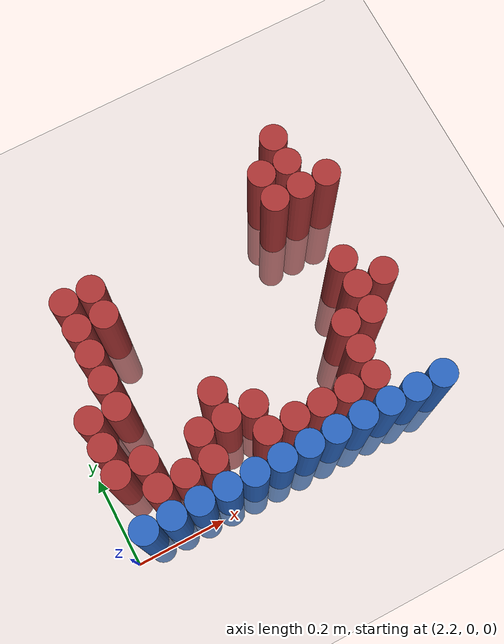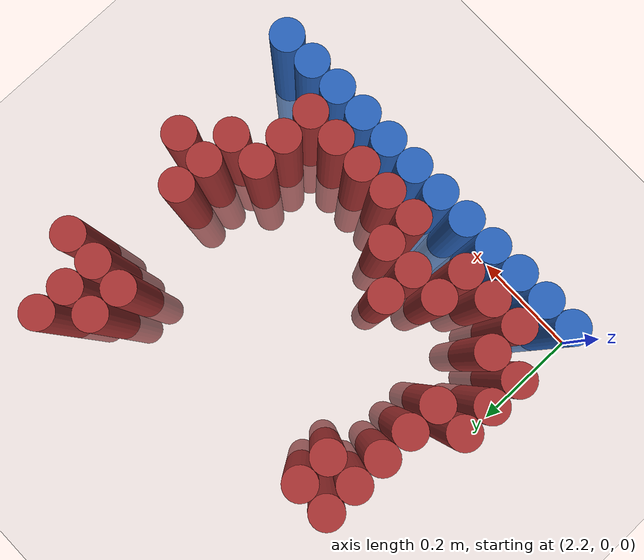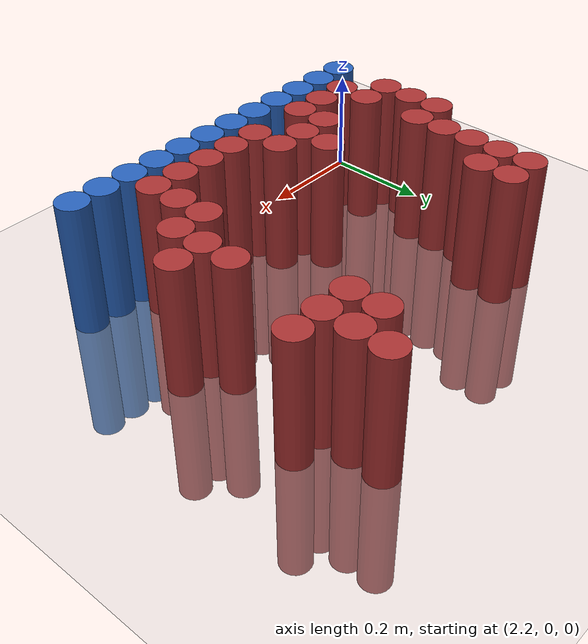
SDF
<sdf version="1.6">
 <world name="default">
  <model name="ground_plane">
   <static>1</static>
   <link name="link">
    <collision name="collision">
     <geometry><plane><normal>0 0 1</normal><size>100 100</size></plane></geometry>
     <surface><friction><ode><mu>100</mu><mu2>50</mu2></ode></friction></surface>
    </collision>
    <visual name="visual">
     <cast_shadows>0</cast_shadows>
     <geometry><plane><normal>0 0 1</normal><size>100 100</size></plane></geometry>
     <material>
      <script><uri>file://media/materials/scripts/gazebo.material</uri><name>Gazebo/Grey</name></script>
     </material>
    </visual>
   </link>
  </model>
  <model name="unit_cylinder_219">
   <static>1</static>
   <pose>2.850000 0.630000 0.000000 0.000000 0.000000 0.000000</pose>
   <link name="link">
    <inertial>
     <mass>1</mass>
     <inertia><ixx>0.145833</ixx><ixy>0</ixy><ixz>0</ixz><iyy>0.145833</iyy><iyz>0</iyz><izz>0.125</izz></inertia>
    </inertial>
    <collision name="collision">
     <geometry><cylinder><radius>0.030000</radius><length>0.5</length></cylinder></geometry>
    </collision>
    <visual name="visual">
     <geometry><cylinder><radius>0.030000</radius><length>0.5</length></cylinder></geometry>
     <material>
      <ambient>0.648000 0.192000 0.192000 1</ambient>
      <diffuse>0.648000 0.192000 0.192000 1</diffuse>
     </material>
     <material>
      <script><name>Gazebo/Grey</name><uri>file://media/materials/scripts/gazebo.material</uri></script>
     </material>
    </visual>
   </link>
  </model>
  <model name="unit_cylinder_226">
   <static>1</static>
   <pose>2.790000 0.570000 0.000000 0.000000 0.000000 0.000000</pose>
   <link name="link">
    <inertial>
     <mass>1</mass>
     <inertia><ixx>0.145833</ixx><ixy>0</ixy><ixz>0</ixz><iyy>0.145833</iyy><iyz>0</iyz><izz>0.125</izz></inertia>
    </inertial>
    <collision name="collision">
     <geometry><cylinder><radius>0.030000</radius><length>0.5</length></cylinder></geometry>
    </collision>
    <visual name="visual">
     <geometry><cylinder><radius>0.030000</radius><length>0.5</length></cylinder></geometry>
     <material>
      <ambient>0.648000 0.192000 0.192000 1</ambient>
      <diffuse>0.648000 0.192000 0.192000 1</diffuse>
     </material>
     <material>
      <script><name>Gazebo/Grey</name><uri>file://media/materials/scripts/gazebo.material</uri></script>
     </material>
    </visual>
   </link>
  </model>
  <model name="unit_cylinder_227">
   <static>1</static>
   <pose>2.850000 0.570000 0.000000 0.000000 0.000000 0.000000</pose>
   <link name="link">
    <inertial>
     <mass>1</mass>
     <inertia><ixx>0.145833</ixx><ixy>0</ixy><ixz>0</ixz><iyy>0.145833</iyy><iyz>0</iyz><izz>0.125</izz></inertia>
    </inertial>
    <collision name="collision">
     <geometry><cylinder><radius>0.030000</radius><length>0.5</length></cylinder></geometry>
    </collision>
    <visual name="visual">
     <geometry><cylinder><radius>0.030000</radius><length>0.5</length></cylinder></geometry>
     <material>
      <ambient>0.648000 0.192000 0.192000 1</ambient>
      <diffuse>0.648000 0.192000 0.192000 1</diffuse>
     </material>
     <material>
      <script><name>Gazebo/Grey</name><uri>file://media/materials/scripts/gazebo.material</uri></script>
     </material>
    </visual>
   </link>
  </model>
  <model name="unit_cylinder_235">
   <static>1</static>
   <pose>2.310000 0.510000 0.000000 0.000000 0.000000 0.000000</pose>
   <link name="link">
    <inertial>
     <mass>1</mass>
     <inertia><ixx>0.145833</ixx><ixy>0</ixy><ixz>0</ixz><iyy>0.145833</iyy><iyz>0</iyz><izz>0.125</izz></inertia>
    </inertial>
    <collision name="collision">
     <geometry><cylinder><radius>0.030000</radius><length>0.5</length></cylinder></geometry>
    </collision>
    <visual name="visual">
     <geometry><cylinder><radius>0.030000</radius><length>0.5</length></cylinder></geometry>
     <material>
      <ambient>0.648000 0.192000 0.192000 1</ambient>
      <diffuse>0.648000 0.192000 0.192000 1</diffuse>
     </material>
     <material>
      <script><name>Gazebo/Grey</name><uri>file://media/materials/scripts/gazebo.material</uri></script>
     </material>
    </visual>
   </link>
  </model>
  <model name="unit_cylinder_236">
   <static>1</static>
   <pose>2.370000 0.510000 0.000000 0.000000 0.000000 0.000000</pose>
   <link name="link">
    <inertial>
     <mass>1</mass>
     <inertia><ixx>0.145833</ixx><ixy>0</ixy><ixz>0</ixz><iyy>0.145833</iyy><iyz>0</iyz><izz>0.125</izz></inertia>
    </inertial>
    <collision name="collision">
     <geometry><cylinder><radius>0.030000</radius><length>0.5</length></cylinder></geometry>
    </collision>
    <visual name="visual">
     <geometry><cylinder><radius>0.030000</radius><length>0.5</length></cylinder></geometry>
     <material>
      <ambient>0.648000 0.192000 0.192000 1</ambient>
      <diffuse>0.648000 0.192000 0.192000 1</diffuse>
     </material>
     <material>
      <script><name>Gazebo/Grey</name><uri>file://media/materials/scripts/gazebo.material</uri></script>
     </material>
    </visual>
   </link>
  </model>
  <model name="unit_cylinder_237">
   <static>1</static>
   <pose>2.790000 0.510000 0.000000 0.000000 0.000000 0.000000</pose>
   <link name="link">
    <inertial>
     <mass>1</mass>
     <inertia><ixx>0.145833</ixx><ixy>0</ixy><ixz>0</ixz><iyy>0.145833</iyy><iyz>0</iyz><izz>0.125</izz></inertia>
    </inertial>
    <collision name="collision">
     <geometry><cylinder><radius>0.030000</radius><length>0.5</length></cylinder></geometry>
    </collision>
    <visual name="visual">
     <geometry><cylinder><radius>0.030000</radius><length>0.5</length></cylinder></geometry>
     <material>
      <ambient>0.648000 0.192000 0.192000 1</ambient>
      <diffuse>0.648000 0.192000 0.192000 1</diffuse>
     </material>
     <material>
      <script><name>Gazebo/Grey</name><uri>file://media/materials/scripts/gazebo.material</uri></script>
     </material>
    </visual>
   </link>
  </model>
  <model name="unit_cylinder_238">
   <static>1</static>
   <pose>2.850000 0.510000 0.000000 0.000000 0.000000 0.000000</pose>
   <link name="link">
    <inertial>
     <mass>1</mass>
     <inertia><ixx>0.145833</ixx><ixy>0</ixy><ixz>0</ixz><iyy>0.145833</iyy><iyz>0</iyz><izz>0.125</izz></inertia>
    </inertial>
    <collision name="collision">
     <geometry><cylinder><radius>0.030000</radius><length>0.5</length></cylinder></geometry>
    </collision>
    <visual name="visual">
     <geometry><cylinder><radius>0.030000</radius><length>0.5</length></cylinder></geometry>
     <material>
      <ambient>0.648000 0.192000 0.192000 1</ambient>
      <diffuse>0.648000 0.192000 0.192000 1</diffuse>
     </material>
     <material>
      <script><name>Gazebo/Grey</name><uri>file://media/materials/scripts/gazebo.material</uri></script>
     </material>
    </visual>
   </link>
  </model>
  <model name="unit_cylinder_239">
   <static>1</static>
   <pose>2.910000 0.510000 0.000000 0.000000 0.000000 0.000000</pose>
   <link name="link">
    <inertial>
     <mass>1</mass>
     <inertia><ixx>0.145833</ixx><ixy>0</ixy><ixz>0</ixz><iyy>0.145833</iyy><iyz>0</iyz><izz>0.125</izz></inertia>
    </inertial>
    <collision name="collision">
     <geometry><cylinder><radius>0.030000</radius><length>0.5</length></cylinder></geometry>
    </collision>
    <visual name="visual">
     <geometry><cylinder><radius>0.030000</radius><length>0.5</length></cylinder></geometry>
     <material>
      <ambient>0.648000 0.192000 0.192000 1</ambient>
      <diffuse>0.648000 0.192000 0.192000 1</diffuse>
     </material>
     <material>
      <script><name>Gazebo/Grey</name><uri>file://media/materials/scripts/gazebo.material</uri></script>
     </material>
    </visual>
   </link>
  </model>
  <model name="unit_cylinder_245">
   <static>1</static>
   <pose>2.310000 0.450000 0.000000 0.000000 0.000000 0.000000</pose>
   <link name="link">
    <inertial>
     <mass>1</mass>
     <inertia><ixx>0.145833</ixx><ixy>0</ixy><ixz>0</ixz><iyy>0.145833</iyy><iyz>0</iyz><izz>0.125</izz></inertia>
    </inertial>
    <collision name="collision">
     <geometry><cylinder><radius>0.030000</radius><length>0.5</length></cylinder></geometry>
    </collision>
    <visual name="visual">
     <geometry><cylinder><radius>0.030000</radius><length>0.5</length></cylinder></geometry>
     <material>
      <ambient>0.648000 0.192000 0.192000 1</ambient>
      <diffuse>0.648000 0.192000 0.192000 1</diffuse>
     </material>
     <material>
      <script><name>Gazebo/Grey</name><uri>file://media/materials/scripts/gazebo.material</uri></script>
     </material>
    </visual>
   </link>
  </model>
  <model name="unit_cylinder_246">
   <static>1</static>
   <pose>2.370000 0.450000 0.000000 0.000000 0.000000 0.000000</pose>
   <link name="link">
    <inertial>
     <mass>1</mass>
     <inertia><ixx>0.145833</ixx><ixy>0</ixy><ixz>0</ixz><iyy>0.145833</iyy><iyz>0</iyz><izz>0.125</izz></inertia>
    </inertial>
    <collision name="collision">
     <geometry><cylinder><radius>0.030000</radius><length>0.5</length></cylinder></geometry>
    </collision>
    <visual name="visual">
     <geometry><cylinder><radius>0.030000</radius><length>0.5</length></cylinder></geometry>
     <material>
      <ambient>0.648000 0.192000 0.192000 1</ambient>
      <diffuse>0.648000 0.192000 0.192000 1</diffuse>
     </material>
     <material>
      <script><name>Gazebo/Grey</name><uri>file://media/materials/scripts/gazebo.material</uri></script>
     </material>
    </visual>
   </link>
  </model>
  <model name="unit_cylinder_249">
   <static>1</static>
   <pose>2.310000 0.390000 0.000000 0.000000 0.000000 0.000000</pose>
   <link name="link">
    <inertial>
     <mass>1</mass>
     <inertia><ixx>0.145833</ixx><ixy>0</ixy><ixz>0</ixz><iyy>0.145833</iyy><iyz>0</iyz><izz>0.125</izz></inertia>
    </inertial>
    <collision name="collision">
     <geometry><cylinder><radius>0.030000</radius><length>0.5</length></cylinder></geometry>
    </collision>
    <visual name="visual">
     <geometry><cylinder><radius>0.030000</radius><length>0.5</length></cylinder></geometry>
     <material>
      <ambient>0.648000 0.192000 0.192000 1</ambient>
      <diffuse>0.648000 0.192000 0.192000 1</diffuse>
     </material>
     <material>
      <script><name>Gazebo/Grey</name><uri>file://media/materials/scripts/gazebo.material</uri></script>
     </material>
    </visual>
   </link>
  </model>
  <model name="unit_cylinder_252">
   <static>1</static>
   <pose>2.310000 0.330000 0.000000 0.000000 0.000000 0.000000</pose>
   <link name="link">
    <inertial>
     <mass>1</mass>
     <inertia><ixx>0.145833</ixx><ixy>0</ixy><ixz>0</ixz><iyy>0.145833</iyy><iyz>0</iyz><izz>0.125</izz></inertia>
    </inertial>
    <collision name="collision">
     <geometry><cylinder><radius>0.030000</radius><length>0.5</length></cylinder></geometry>
    </collision>
    <visual name="visual">
     <geometry><cylinder><radius>0.030000</radius><length>0.5</length></cylinder></geometry>
     <material>
      <ambient>0.648000 0.192000 0.192000 1</ambient>
      <diffuse>0.648000 0.192000 0.192000 1</diffuse>
     </material>
     <material>
      <script><name>Gazebo/Grey</name><uri>file://media/materials/scripts/gazebo.material</uri></script>
     </material>
    </visual>
   </link>
  </model>
  <model name="unit_cylinder_253">
   <static>1</static>
   <pose>2.850000 0.330000 0.000000 0.000000 0.000000 0.000000</pose>
   <link name="link">
    <inertial>
     <mass>1</mass>
     <inertia><ixx>0.145833</ixx><ixy>0</ixy><ixz>0</ixz><iyy>0.145833</iyy><iyz>0</iyz><izz>0.125</izz></inertia>
    </inertial>
    <collision name="collision">
     <geometry><cylinder><radius>0.030000</radius><length>0.5</length></cylinder></geometry>
    </collision>
    <visual name="visual">
     <geometry><cylinder><radius>0.030000</radius><length>0.5</length></cylinder></geometry>
     <material>
      <ambient>0.648000 0.192000 0.192000 1</ambient>
      <diffuse>0.648000 0.192000 0.192000 1</diffuse>
     </material>
     <material>
      <script><name>Gazebo/Grey</name><uri>file://media/materials/scripts/gazebo.material</uri></script>
     </material>
    </visual>
   </link>
  </model>
  <model name="unit_cylinder_258">
   <static>1</static>
   <pose>2.250000 0.270000 0.000000 0.000000 0.000000 0.000000</pose>
   <link name="link">
    <inertial>
     <mass>1</mass>
     <inertia><ixx>0.145833</ixx><ixy>0</ixy><ixz>0</ixz><iyy>0.145833</iyy><iyz>0</iyz><izz>0.125</izz></inertia>
    </inertial>
    <collision name="collision">
     <geometry><cylinder><radius>0.030000</radius><length>0.5</length></cylinder></geometry>
    </collision>
    <visual name="visual">
     <geometry><cylinder><radius>0.030000</radius><length>0.5</length></cylinder></geometry>
     <material>
      <ambient>0.648000 0.192000 0.192000 1</ambient>
      <diffuse>0.648000 0.192000 0.192000 1</diffuse>
     </material>
     <material>
      <script><name>Gazebo/Grey</name><uri>file://media/materials/scripts/gazebo.material</uri></script>
     </material>
    </visual>
   </link>
  </model>
  <model name="unit_cylinder_259">
   <static>1</static>
   <pose>2.310000 0.270000 0.000000 0.000000 0.000000 0.000000</pose>
   <link name="link">
    <inertial>
     <mass>1</mass>
     <inertia><ixx>0.145833</ixx><ixy>0</ixy><ixz>0</ixz><iyy>0.145833</iyy><iyz>0</iyz><izz>0.125</izz></inertia>
    </inertial>
    <collision name="collision">
     <geometry><cylinder><radius>0.030000</radius><length>0.5</length></cylinder></geometry>
    </collision>
    <visual name="visual">
     <geometry><cylinder><radius>0.030000</radius><length>0.5</length></cylinder></geometry>
     <material>
      <ambient>0.648000 0.192000 0.192000 1</ambient>
      <diffuse>0.648000 0.192000 0.192000 1</diffuse>
     </material>
     <material>
      <script><name>Gazebo/Grey</name><uri>file://media/materials/scripts/gazebo.material</uri></script>
     </material>
    </visual>
   </link>
  </model>
  <model name="unit_cylinder_260">
   <static>1</static>
   <pose>2.850000 0.270000 0.000000 0.000000 0.000000 0.000000</pose>
   <link name="link">
    <inertial>
     <mass>1</mass>
     <inertia><ixx>0.145833</ixx><ixy>0</ixy><ixz>0</ixz><iyy>0.145833</iyy><iyz>0</iyz><izz>0.125</izz></inertia>
    </inertial>
    <collision name="collision">
     <geometry><cylinder><radius>0.030000</radius><length>0.5</length></cylinder></geometry>
    </collision>
    <visual name="visual">
     <geometry><cylinder><radius>0.030000</radius><length>0.5</length></cylinder></geometry>
     <material>
      <ambient>0.648000 0.192000 0.192000 1</ambient>
      <diffuse>0.648000 0.192000 0.192000 1</diffuse>
     </material>
     <material>
      <script><name>Gazebo/Grey</name><uri>file://media/materials/scripts/gazebo.material</uri></script>
     </material>
    </visual>
   </link>
  </model>
  <model name="unit_cylinder_261">
   <static>1</static>
   <pose>2.910000 0.270000 0.000000 0.000000 0.000000 0.000000</pose>
   <link name="link">
    <inertial>
     <mass>1</mass>
     <inertia><ixx>0.145833</ixx><ixy>0</ixy><ixz>0</ixz><iyy>0.145833</iyy><iyz>0</iyz><izz>0.125</izz></inertia>
    </inertial>
    <collision name="collision">
     <geometry><cylinder><radius>0.030000</radius><length>0.5</length></cylinder></geometry>
    </collision>
    <visual name="visual">
     <geometry><cylinder><radius>0.030000</radius><length>0.5</length></cylinder></geometry>
     <material>
      <ambient>0.648000 0.192000 0.192000 1</ambient>
      <diffuse>0.648000 0.192000 0.192000 1</diffuse>
     </material>
     <material>
      <script><name>Gazebo/Grey</name><uri>file://media/materials/scripts/gazebo.material</uri></script>
     </material>
    </visual>
   </link>
  </model>
  <model name="unit_cylinder_271">
   <static>1</static>
   <pose>2.250000 0.210000 0.000000 0.000000 0.000000 0.000000</pose>
   <link name="link">
    <inertial>
     <mass>1</mass>
     <inertia><ixx>0.145833</ixx><ixy>0</ixy><ixz>0</ixz><iyy>0.145833</iyy><iyz>0</iyz><izz>0.125</izz></inertia>
    </inertial>
    <collision name="collision">
     <geometry><cylinder><radius>0.030000</radius><length>0.5</length></cylinder></geometry>
    </collision>
    <visual name="visual">
     <geometry><cylinder><radius>0.030000</radius><length>0.5</length></cylinder></geometry>
     <material>
      <ambient>0.648000 0.192000 0.192000 1</ambient>
      <diffuse>0.648000 0.192000 0.192000 1</diffuse>
     </material>
     <material>
      <script><name>Gazebo/Grey</name><uri>file://media/materials/scripts/gazebo.material</uri></script>
     </material>
    </visual>
   </link>
  </model>
  <model name="unit_cylinder_272">
   <static>1</static>
   <pose>2.490000 0.210000 0.000000 0.000000 0.000000 0.000000</pose>
   <link name="link">
    <inertial>
     <mass>1</mass>
     <inertia><ixx>0.145833</ixx><ixy>0</ixy><ixz>0</ixz><iyy>0.145833</iyy><iyz>0</iyz><izz>0.125</izz></inertia>
    </inertial>
    <collision name="collision">
     <geometry><cylinder><radius>0.030000</radius><length>0.5</length></cylinder></geometry>
    </collision>
    <visual name="visual">
     <geometry><cylinder><radius>0.030000</radius><length>0.5</length></cylinder></geometry>
     <material>
      <ambient>0.648000 0.192000 0.192000 1</ambient>
      <diffuse>0.648000 0.192000 0.192000 1</diffuse>
     </material>
     <material>
      <script><name>Gazebo/Grey</name><uri>file://media/materials/scripts/gazebo.material</uri></script>
     </material>
    </visual>
   </link>
  </model>
  <model name="unit_cylinder_273">
   <static>1</static>
   <pose>2.790000 0.210000 0.000000 0.000000 0.000000 0.000000</pose>
   <link name="link">
    <inertial>
     <mass>1</mass>
     <inertia><ixx>0.145833</ixx><ixy>0</ixy><ixz>0</ixz><iyy>0.145833</iyy><iyz>0</iyz><izz>0.125</izz></inertia>
    </inertial>
    <collision name="collision">
     <geometry><cylinder><radius>0.030000</radius><length>0.5</length></cylinder></geometry>
    </collision>
    <visual name="visual">
     <geometry><cylinder><radius>0.030000</radius><length>0.5</length></cylinder></geometry>
     <material>
      <ambient>0.648000 0.192000 0.192000 1</ambient>
      <diffuse>0.648000 0.192000 0.192000 1</diffuse>
     </material>
     <material>
      <script><name>Gazebo/Grey</name><uri>file://media/materials/scripts/gazebo.material</uri></script>
     </material>
    </visual>
   </link>
  </model>
  <model name="unit_cylinder_274">
   <static>1</static>
   <pose>2.850000 0.210000 0.000000 0.000000 0.000000 0.000000</pose>
   <link name="link">
    <inertial>
     <mass>1</mass>
     <inertia><ixx>0.145833</ixx><ixy>0</ixy><ixz>0</ixz><iyy>0.145833</iyy><iyz>0</iyz><izz>0.125</izz></inertia>
    </inertial>
    <collision name="collision">
     <geometry><cylinder><radius>0.030000</radius><length>0.5</length></cylinder></geometry>
    </collision>
    <visual name="visual">
     <geometry><cylinder><radius>0.030000</radius><length>0.5</length></cylinder></geometry>
     <material>
      <ambient>0.648000 0.192000 0.192000 1</ambient>
      <diffuse>0.648000 0.192000 0.192000 1</diffuse>
     </material>
     <material>
      <script><name>Gazebo/Grey</name><uri>file://media/materials/scripts/gazebo.material</uri></script>
     </material>
    </visual>
   </link>
  </model>
  <model name="unit_cylinder_280">
   <static>1</static>
   <pose>2.250000 0.150000 0.000000 0.000000 0.000000 0.000000</pose>
   <link name="link">
    <inertial>
     <mass>1</mass>
     <inertia><ixx>0.145833</ixx><ixy>0</ixy><ixz>0</ixz><iyy>0.145833</iyy><iyz>0</iyz><izz>0.125</izz></inertia>
    </inertial>
    <collision name="collision">
     <geometry><cylinder><radius>0.030000</radius><length>0.5</length></cylinder></geometry>
    </collision>
    <visual name="visual">
     <geometry><cylinder><radius>0.030000</radius><length>0.5</length></cylinder></geometry>
     <material>
      <ambient>0.648000 0.192000 0.192000 1</ambient>
      <diffuse>0.648000 0.192000 0.192000 1</diffuse>
     </material>
     <material>
      <script><name>Gazebo/Grey</name><uri>file://media/materials/scripts/gazebo.material</uri></script>
     </material>
    </visual>
   </link>
  </model>
  <model name="unit_cylinder_281">
   <static>1</static>
   <pose>2.310000 0.150000 0.000000 0.000000 0.000000 0.000000</pose>
   <link name="link">
    <inertial>
     <mass>1</mass>
     <inertia><ixx>0.145833</ixx><ixy>0</ixy><ixz>0</ixz><iyy>0.145833</iyy><iyz>0</iyz><izz>0.125</izz></inertia>
    </inertial>
    <collision name="collision">
     <geometry><cylinder><radius>0.030000</radius><length>0.5</length></cylinder></geometry>
    </collision>
    <visual name="visual">
     <geometry><cylinder><radius>0.030000</radius><length>0.5</length></cylinder></geometry>
     <material>
      <ambient>0.648000 0.192000 0.192000 1</ambient>
      <diffuse>0.648000 0.192000 0.192000 1</diffuse>
     </material>
     <material>
      <script><name>Gazebo/Grey</name><uri>file://media/materials/scripts/gazebo.material</uri></script>
     </material>
    </visual>
   </link>
  </model>
  <model name="unit_cylinder_282">
   <static>1</static>
   <pose>2.430000 0.150000 0.000000 0.000000 0.000000 0.000000</pose>
   <link name="link">
    <inertial>
     <mass>1</mass>
     <inertia><ixx>0.145833</ixx><ixy>0</ixy><ixz>0</ixz><iyy>0.145833</iyy><iyz>0</iyz><izz>0.125</izz></inertia>
    </inertial>
    <collision name="collision">
     <geometry><cylinder><radius>0.030000</radius><length>0.5</length></cylinder></geometry>
    </collision>
    <visual name="visual">
     <geometry><cylinder><radius>0.030000</radius><length>0.5</length></cylinder></geometry>
     <material>
      <ambient>0.648000 0.192000 0.192000 1</ambient>
      <diffuse>0.648000 0.192000 0.192000 1</diffuse>
     </material>
     <material>
      <script><name>Gazebo/Grey</name><uri>file://media/materials/scripts/gazebo.material</uri></script>
     </material>
    </visual>
   </link>
  </model>
  <model name="unit_cylinder_283">
   <static>1</static>
   <pose>2.490000 0.150000 0.000000 0.000000 0.000000 0.000000</pose>
   <link name="link">
    <inertial>
     <mass>1</mass>
     <inertia><ixx>0.145833</ixx><ixy>0</ixy><ixz>0</ixz><iyy>0.145833</iyy><iyz>0</iyz><izz>0.125</izz></inertia>
    </inertial>
    <collision name="collision">
     <geometry><cylinder><radius>0.030000</radius><length>0.5</length></cylinder></geometry>
    </collision>
    <visual name="visual">
     <geometry><cylinder><radius>0.030000</radius><length>0.5</length></cylinder></geometry>
     <material>
      <ambient>0.648000 0.192000 0.192000 1</ambient>
      <diffuse>0.648000 0.192000 0.192000 1</diffuse>
     </material>
     <material>
      <script><name>Gazebo/Grey</name><uri>file://media/materials/scripts/gazebo.material</uri></script>
     </material>
    </visual>
   </link>
  </model>
  <model name="unit_cylinder_284">
   <static>1</static>
   <pose>2.550000 0.150000 0.000000 0.000000 0.000000 0.000000</pose>
   <link name="link">
    <inertial>
     <mass>1</mass>
     <inertia><ixx>0.145833</ixx><ixy>0</ixy><ixz>0</ixz><iyy>0.145833</iyy><iyz>0</iyz><izz>0.125</izz></inertia>
    </inertial>
    <collision name="collision">
     <geometry><cylinder><radius>0.030000</radius><length>0.5</length></cylinder></geometry>
    </collision>
    <visual name="visual">
     <geometry><cylinder><radius>0.030000</radius><length>0.5</length></cylinder></geometry>
     <material>
      <ambient>0.648000 0.192000 0.192000 1</ambient>
      <diffuse>0.648000 0.192000 0.192000 1</diffuse>
     </material>
     <material>
      <script><name>Gazebo/Grey</name><uri>file://media/materials/scripts/gazebo.material</uri></script>
     </material>
    </visual>
   </link>
  </model>
  <model name="unit_cylinder_285">
   <static>1</static>
   <pose>2.790000 0.150000 0.000000 0.000000 0.000000 0.000000</pose>
   <link name="link">
    <inertial>
     <mass>1</mass>
     <inertia><ixx>0.145833</ixx><ixy>0</ixy><ixz>0</ixz><iyy>0.145833</iyy><iyz>0</iyz><izz>0.125</izz></inertia>
    </inertial>
    <collision name="collision">
     <geometry><cylinder><radius>0.030000</radius><length>0.5</length></cylinder></geometry>
    </collision>
    <visual name="visual">
     <geometry><cylinder><radius>0.030000</radius><length>0.5</length></cylinder></geometry>
     <material>
      <ambient>0.648000 0.192000 0.192000 1</ambient>
      <diffuse>0.648000 0.192000 0.192000 1</diffuse>
     </material>
     <material>
      <script><name>Gazebo/Grey</name><uri>file://media/materials/scripts/gazebo.material</uri></script>
     </material>
    </visual>
   </link>
  </model>
  <model name="unit_cylinder_293">
   <static>1</static>
   <pose>2.310000 0.090000 0.000000 0.000000 0.000000 0.000000</pose>
   <link name="link">
    <inertial>
     <mass>1</mass>
     <inertia><ixx>0.145833</ixx><ixy>0</ixy><ixz>0</ixz><iyy>0.145833</iyy><iyz>0</iyz><izz>0.125</izz></inertia>
    </inertial>
    <collision name="collision">
     <geometry><cylinder><radius>0.030000</radius><length>0.5</length></cylinder></geometry>
    </collision>
    <visual name="visual">
     <geometry><cylinder><radius>0.030000</radius><length>0.5</length></cylinder></geometry>
     <material>
      <ambient>0.648000 0.192000 0.192000 1</ambient>
      <diffuse>0.648000 0.192000 0.192000 1</diffuse>
     </material>
     <material>
      <script><name>Gazebo/Grey</name><uri>file://media/materials/scripts/gazebo.material</uri></script>
     </material>
    </visual>
   </link>
  </model>
  <model name="unit_cylinder_294">
   <static>1</static>
   <pose>2.370000 0.090000 0.000000 0.000000 0.000000 0.000000</pose>
   <link name="link">
    <inertial>
     <mass>1</mass>
     <inertia><ixx>0.145833</ixx><ixy>0</ixy><ixz>0</ixz><iyy>0.145833</iyy><iyz>0</iyz><izz>0.125</izz></inertia>
    </inertial>
    <collision name="collision">
     <geometry><cylinder><radius>0.030000</radius><length>0.5</length></cylinder></geometry>
    </collision>
    <visual name="visual">
     <geometry><cylinder><radius>0.030000</radius><length>0.5</length></cylinder></geometry>
     <material>
      <ambient>0.648000 0.192000 0.192000 1</ambient>
      <diffuse>0.648000 0.192000 0.192000 1</diffuse>
     </material>
     <material>
      <script><name>Gazebo/Grey</name><uri>file://media/materials/scripts/gazebo.material</uri></script>
     </material>
    </visual>
   </link>
  </model>
  <model name="unit_cylinder_295">
   <static>1</static>
   <pose>2.430000 0.090000 0.000000 0.000000 0.000000 0.000000</pose>
   <link name="link">
    <inertial>
     <mass>1</mass>
     <inertia><ixx>0.145833</ixx><ixy>0</ixy><ixz>0</ixz><iyy>0.145833</iyy><iyz>0</iyz><izz>0.125</izz></inertia>
    </inertial>
    <collision name="collision">
     <geometry><cylinder><radius>0.030000</radius><length>0.5</length></cylinder></geometry>
    </collision>
    <visual name="visual">
     <geometry><cylinder><radius>0.030000</radius><length>0.5</length></cylinder></geometry>
     <material>
      <ambient>0.648000 0.192000 0.192000 1</ambient>
      <diffuse>0.648000 0.192000 0.192000 1</diffuse>
     </material>
     <material>
      <script><name>Gazebo/Grey</name><uri>file://media/materials/scripts/gazebo.material</uri></script>
     </material>
    </visual>
   </link>
  </model>
  <model name="unit_cylinder_296">
   <static>1</static>
   <pose>2.550000 0.090000 0.000000 0.000000 0.000000 0.000000</pose>
   <link name="link">
    <inertial>
     <mass>1</mass>
     <inertia><ixx>0.145833</ixx><ixy>0</ixy><ixz>0</ixz><iyy>0.145833</iyy><iyz>0</iyz><izz>0.125</izz></inertia>
    </inertial>
    <collision name="collision">
     <geometry><cylinder><radius>0.030000</radius><length>0.5</length></cylinder></geometry>
    </collision>
    <visual name="visual">
     <geometry><cylinder><radius>0.030000</radius><length>0.5</length></cylinder></geometry>
     <material>
      <ambient>0.648000 0.192000 0.192000 1</ambient>
      <diffuse>0.648000 0.192000 0.192000 1</diffuse>
     </material>
     <material>
      <script><name>Gazebo/Grey</name><uri>file://media/materials/scripts/gazebo.material</uri></script>
     </material>
    </visual>
   </link>
  </model>
  <model name="unit_cylinder_297">
   <static>1</static>
   <pose>2.610000 0.090000 0.000000 0.000000 0.000000 0.000000</pose>
   <link name="link">
    <inertial>
     <mass>1</mass>
     <inertia><ixx>0.145833</ixx><ixy>0</ixy><ixz>0</ixz><iyy>0.145833</iyy><iyz>0</iyz><izz>0.125</izz></inertia>
    </inertial>
    <collision name="collision">
     <geometry><cylinder><radius>0.030000</radius><length>0.5</length></cylinder></geometry>
    </collision>
    <visual name="visual">
     <geometry><cylinder><radius>0.030000</radius><length>0.5</length></cylinder></geometry>
     <material>
      <ambient>0.648000 0.192000 0.192000 1</ambient>
      <diffuse>0.648000 0.192000 0.192000 1</diffuse>
     </material>
     <material>
      <script><name>Gazebo/Grey</name><uri>file://media/materials/scripts/gazebo.material</uri></script>
     </material>
    </visual>
   </link>
  </model>
  <model name="unit_cylinder_298">
   <static>1</static>
   <pose>2.670000 0.090000 0.000000 0.000000 0.000000 0.000000</pose>
   <link name="link">
    <inertial>
     <mass>1</mass>
     <inertia><ixx>0.145833</ixx><ixy>0</ixy><ixz>0</ixz><iyy>0.145833</iyy><iyz>0</iyz><izz>0.125</izz></inertia>
    </inertial>
    <collision name="collision">
     <geometry><cylinder><radius>0.030000</radius><length>0.5</length></cylinder></geometry>
    </collision>
    <visual name="visual">
     <geometry><cylinder><radius>0.030000</radius><length>0.5</length></cylinder></geometry>
     <material>
      <ambient>0.648000 0.192000 0.192000 1</ambient>
      <diffuse>0.648000 0.192000 0.192000 1</diffuse>
     </material>
     <material>
      <script><name>Gazebo/Grey</name><uri>file://media/materials/scripts/gazebo.material</uri></script>
     </material>
    </visual>
   </link>
  </model>
  <model name="unit_cylinder_299">
   <static>1</static>
   <pose>2.730000 0.090000 0.000000 0.000000 0.000000 0.000000</pose>
   <link name="link">
    <inertial>
     <mass>1</mass>
     <inertia><ixx>0.145833</ixx><ixy>0</ixy><ixz>0</ixz><iyy>0.145833</iyy><iyz>0</iyz><izz>0.125</izz></inertia>
    </inertial>
    <collision name="collision">
     <geometry><cylinder><radius>0.030000</radius><length>0.5</length></cylinder></geometry>
    </collision>
    <visual name="visual">
     <geometry><cylinder><radius>0.030000</radius><length>0.5</length></cylinder></geometry>
     <material>
      <ambient>0.648000 0.192000 0.192000 1</ambient>
      <diffuse>0.648000 0.192000 0.192000 1</diffuse>
     </material>
     <material>
      <script><name>Gazebo/Grey</name><uri>file://media/materials/scripts/gazebo.material</uri></script>
     </material>
    </visual>
   </link>
  </model>
  <model name="unit_cylinder_300">
   <static>1</static>
   <pose>2.790000 0.090000 0.000000 0.000000 0.000000 0.000000</pose>
   <link name="link">
    <inertial>
     <mass>1</mass>
     <inertia><ixx>0.145833</ixx><ixy>0</ixy><ixz>0</ixz><iyy>0.145833</iyy><iyz>0</iyz><izz>0.125</izz></inertia>
    </inertial>
    <collision name="collision">
     <geometry><cylinder><radius>0.030000</radius><length>0.5</length></cylinder></geometry>
    </collision>
    <visual name="visual">
     <geometry><cylinder><radius>0.030000</radius><length>0.5</length></cylinder></geometry>
     <material>
      <ambient>0.648000 0.192000 0.192000 1</ambient>
      <diffuse>0.648000 0.192000 0.192000 1</diffuse>
     </material>
     <material>
      <script><name>Gazebo/Grey</name><uri>file://media/materials/scripts/gazebo.material</uri></script>
     </material>
    </visual>
   </link>
  </model>
  <model name="unit_cylinder_307">
   <static>1</static>
   <pose>2.250000 0.030000 0.000000 0.000000 0.000000 0.000000</pose>
   <link name="link">
    <inertial>
     <mass>1</mass>
     <inertia><ixx>0.145833</ixx><ixy>0</ixy><ixz>0</ixz><iyy>0.145833</iyy><iyz>0</iyz><izz>0.125</izz></inertia>
    </inertial>
    <collision name="collision">
     <geometry><cylinder><radius>0.030000</radius><length>0.5</length></cylinder></geometry>
    </collision>
    <visual name="visual">
     <geometry><cylinder><radius>0.030000</radius><length>0.5</length></cylinder></geometry>
     <material>
      <ambient>0.152000 0.379000 0.720000 1</ambient>
      <diffuse>0.152000 0.379000 0.720000 1</diffuse>
     </material>
     <material>
      <script><name>Gazebo/Grey</name><uri>file://media/materials/scripts/gazebo.material</uri></script>
     </material>
    </visual>
   </link>
  </model>
  <model name="unit_cylinder_308">
   <static>1</static>
   <pose>2.310000 0.030000 0.000000 0.000000 0.000000 0.000000</pose>
   <link name="link">
    <inertial>
     <mass>1</mass>
     <inertia><ixx>0.145833</ixx><ixy>0</ixy><ixz>0</ixz><iyy>0.145833</iyy><iyz>0</iyz><izz>0.125</izz></inertia>
    </inertial>
    <collision name="collision">
     <geometry><cylinder><radius>0.030000</radius><length>0.5</length></cylinder></geometry>
    </collision>
    <visual name="visual">
     <geometry><cylinder><radius>0.030000</radius><length>0.5</length></cylinder></geometry>
     <material>
      <ambient>0.152000 0.379000 0.720000 1</ambient>
      <diffuse>0.152000 0.379000 0.720000 1</diffuse>
     </material>
     <material>
      <script><name>Gazebo/Grey</name><uri>file://media/materials/scripts/gazebo.material</uri></script>
     </material>
    </visual>
   </link>
  </model>
  <model name="unit_cylinder_309">
   <static>1</static>
   <pose>2.370000 0.030000 0.000000 0.000000 0.000000 0.000000</pose>
   <link name="link">
    <inertial>
     <mass>1</mass>
     <inertia><ixx>0.145833</ixx><ixy>0</ixy><ixz>0</ixz><iyy>0.145833</iyy><iyz>0</iyz><izz>0.125</izz></inertia>
    </inertial>
    <collision name="collision">
     <geometry><cylinder><radius>0.030000</radius><length>0.5</length></cylinder></geometry>
    </collision>
    <visual name="visual">
     <geometry><cylinder><radius>0.030000</radius><length>0.5</length></cylinder></geometry>
     <material>
      <ambient>0.152000 0.379000 0.720000 1</ambient>
      <diffuse>0.152000 0.379000 0.720000 1</diffuse>
     </material>
     <material>
      <script><name>Gazebo/Grey</name><uri>file://media/materials/scripts/gazebo.material</uri></script>
     </material>
    </visual>
   </link>
  </model>
  <model name="unit_cylinder_310">
   <static>1</static>
   <pose>2.430000 0.030000 0.000000 0.000000 0.000000 0.000000</pose>
   <link name="link">
    <inertial>
     <mass>1</mass>
     <inertia><ixx>0.145833</ixx><ixy>0</ixy><ixz>0</ixz><iyy>0.145833</iyy><iyz>0</iyz><izz>0.125</izz></inertia>
    </inertial>
    <collision name="collision">
     <geometry><cylinder><radius>0.030000</radius><length>0.5</length></cylinder></geometry>
    </collision>
    <visual name="visual">
     <geometry><cylinder><radius>0.030000</radius><length>0.5</length></cylinder></geometry>
     <material>
      <ambient>0.152000 0.379000 0.720000 1</ambient>
      <diffuse>0.152000 0.379000 0.720000 1</diffuse>
     </material>
     <material>
      <script><name>Gazebo/Grey</name><uri>file://media/materials/scripts/gazebo.material</uri></script>
     </material>
    </visual>
   </link>
  </model>
  <model name="unit_cylinder_311">
   <static>1</static>
   <pose>2.490000 0.030000 0.000000 0.000000 0.000000 0.000000</pose>
   <link name="link">
    <inertial>
     <mass>1</mass>
     <inertia><ixx>0.145833</ixx><ixy>0</ixy><ixz>0</ixz><iyy>0.145833</iyy><iyz>0</iyz><izz>0.125</izz></inertia>
    </inertial>
    <collision name="collision">
     <geometry><cylinder><radius>0.030000</radius><length>0.5</length></cylinder></geometry>
    </collision>
    <visual name="visual">
     <geometry><cylinder><radius>0.030000</radius><length>0.5</length></cylinder></geometry>
     <material>
      <ambient>0.152000 0.379000 0.720000 1</ambient>
      <diffuse>0.152000 0.379000 0.720000 1</diffuse>
     </material>
     <material>
      <script><name>Gazebo/Grey</name><uri>file://media/materials/scripts/gazebo.material</uri></script>
     </material>
    </visual>
   </link>
  </model>
  <model name="unit_cylinder_312">
   <static>1</static>
   <pose>2.550000 0.030000 0.000000 0.000000 0.000000 0.000000</pose>
   <link name="link">
    <inertial>
     <mass>1</mass>
     <inertia><ixx>0.145833</ixx><ixy>0</ixy><ixz>0</ixz><iyy>0.145833</iyy><iyz>0</iyz><izz>0.125</izz></inertia>
    </inertial>
    <collision name="collision">
     <geometry><cylinder><radius>0.030000</radius><length>0.5</length></cylinder></geometry>
    </collision>
    <visual name="visual">
     <geometry><cylinder><radius>0.030000</radius><length>0.5</length></cylinder></geometry>
     <material>
      <ambient>0.152000 0.379000 0.720000 1</ambient>
      <diffuse>0.152000 0.379000 0.720000 1</diffuse>
     </material>
     <material>
      <script><name>Gazebo/Grey</name><uri>file://media/materials/scripts/gazebo.material</uri></script>
     </material>
    </visual>
   </link>
  </model>
  <model name="unit_cylinder_313">
   <static>1</static>
   <pose>2.610000 0.030000 0.000000 0.000000 0.000000 0.000000</pose>
   <link name="link">
    <inertial>
     <mass>1</mass>
     <inertia><ixx>0.145833</ixx><ixy>0</ixy><ixz>0</ixz><iyy>0.145833</iyy><iyz>0</iyz><izz>0.125</izz></inertia>
    </inertial>
    <collision name="collision">
     <geometry><cylinder><radius>0.030000</radius><length>0.5</length></cylinder></geometry>
    </collision>
    <visual name="visual">
     <geometry><cylinder><radius>0.030000</radius><length>0.5</length></cylinder></geometry>
     <material>
      <ambient>0.152000 0.379000 0.720000 1</ambient>
      <diffuse>0.152000 0.379000 0.720000 1</diffuse>
     </material>
     <material>
      <script><name>Gazebo/Grey</name><uri>file://media/materials/scripts/gazebo.material</uri></script>
     </material>
    </visual>
   </link>
  </model>
  <model name="unit_cylinder_314">
   <static>1</static>
   <pose>2.670000 0.030000 0.000000 0.000000 0.000000 0.000000</pose>
   <link name="link">
    <inertial>
     <mass>1</mass>
     <inertia><ixx>0.145833</ixx><ixy>0</ixy><ixz>0</ixz><iyy>0.145833</iyy><iyz>0</iyz><izz>0.125</izz></inertia>
    </inertial>
    <collision name="collision">
     <geometry><cylinder><radius>0.030000</radius><length>0.5</length></cylinder></geometry>
    </collision>
    <visual name="visual">
     <geometry><cylinder><radius>0.030000</radius><length>0.5</length></cylinder></geometry>
     <material>
      <ambient>0.152000 0.379000 0.720000 1</ambient>
      <diffuse>0.152000 0.379000 0.720000 1</diffuse>
     </material>
     <material>
      <script><name>Gazebo/Grey</name><uri>file://media/materials/scripts/gazebo.material</uri></script>
     </material>
    </visual>
   </link>
  </model>
  <model name="unit_cylinder_315">
   <static>1</static>
   <pose>2.730000 0.030000 0.000000 0.000000 0.000000 0.000000</pose>
   <link name="link">
    <inertial>
     <mass>1</mass>
     <inertia><ixx>0.145833</ixx><ixy>0</ixy><ixz>0</ixz><iyy>0.145833</iyy><iyz>0</iyz><izz>0.125</izz></inertia>
    </inertial>
    <collision name="collision">
     <geometry><cylinder><radius>0.030000</radius><length>0.5</length></cylinder></geometry>
    </collision>
    <visual name="visual">
     <geometry><cylinder><radius>0.030000</radius><length>0.5</length></cylinder></geometry>
     <material>
      <ambient>0.152000 0.379000 0.720000 1</ambient>
      <diffuse>0.152000 0.379000 0.720000 1</diffuse>
     </material>
     <material>
      <script><name>Gazebo/Grey</name><uri>file://media/materials/scripts/gazebo.material</uri></script>
     </material>
    </visual>
   </link>
  </model>
  <model name="unit_cylinder_316">
   <static>1</static>
   <pose>2.790000 0.030000 0.000000 0.000000 0.000000 0.000000</pose>
   <link name="link">
    <inertial>
     <mass>1</mass>
     <inertia><ixx>0.145833</ixx><ixy>0</ixy><ixz>0</ixz><iyy>0.145833</iyy><iyz>0</iyz><izz>0.125</izz></inertia>
    </inertial>
    <collision name="collision">
     <geometry><cylinder><radius>0.030000</radius><length>0.5</length></cylinder></geometry>
    </collision>
    <visual name="visual">
     <geometry><cylinder><radius>0.030000</radius><length>0.5</length></cylinder></geometry>
     <material>
      <ambient>0.152000 0.379000 0.720000 1</ambient>
      <diffuse>0.152000 0.379000 0.720000 1</diffuse>
     </material>
     <material>
      <script><name>Gazebo/Grey</name><uri>file://media/materials/scripts/gazebo.material</uri></script>
     </material>
    </visual>
   </link>
  </model>
  <model name="unit_cylinder_317">
   <static>1</static>
   <pose>2.850000 0.030000 0.000000 0.000000 0.000000 0.000000</pose>
   <link name="link">
    <inertial>
     <mass>1</mass>
     <inertia><ixx>0.145833</ixx><ixy>0</ixy><ixz>0</ixz><iyy>0.145833</iyy><iyz>0</iyz><izz>0.125</izz></inertia>
    </inertial>
    <collision name="collision">
     <geometry><cylinder><radius>0.030000</radius><length>0.5</length></cylinder></geometry>
    </collision>
    <visual name="visual">
     <geometry><cylinder><radius>0.030000</radius><length>0.5</length></cylinder></geometry>
     <material>
      <ambient>0.152000 0.379000 0.720000 1</ambient>
      <diffuse>0.152000 0.379000 0.720000 1</diffuse>
     </material>
     <material>
      <script><name>Gazebo/Grey</name><uri>file://media/materials/scripts/gazebo.material</uri></script>
     </material>
    </visual>
   </link>
  </model>
  <model name="unit_cylinder_318">
   <static>1</static>
   <pose>2.910000 0.030000 0.000000 0.000000 0.000000 0.000000</pose>
   <link name="link">
    <inertial>
     <mass>1</mass>
     <inertia><ixx>0.145833</ixx><ixy>0</ixy><ixz>0</ixz><iyy>0.145833</iyy><iyz>0</iyz><izz>0.125</izz></inertia>
    </inertial>
    <collision name="collision">
     <geometry><cylinder><radius>0.030000</radius><length>0.5</length></cylinder></geometry>
    </collision>
    <visual name="visual">
     <geometry><cylinder><radius>0.030000</radius><length>0.5</length></cylinder></geometry>
     <material>
      <ambient>0.152000 0.379000 0.720000 1</ambient>
      <diffuse>0.152000 0.379000 0.720000 1</diffuse>
     </material>
     <material>
      <script><name>Gazebo/Grey</name><uri>file://media/materials/scripts/gazebo.material</uri></script>
     </material>
    </visual>
   </link>
  </model>
 </world>
</sdf>
